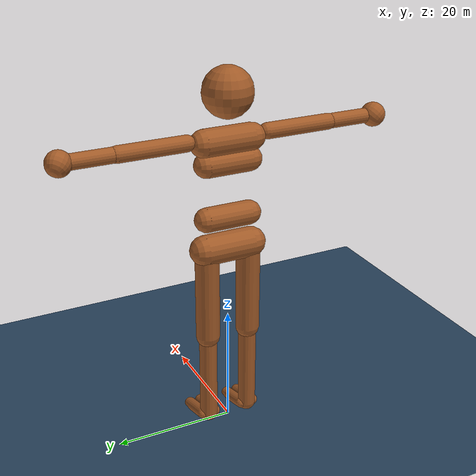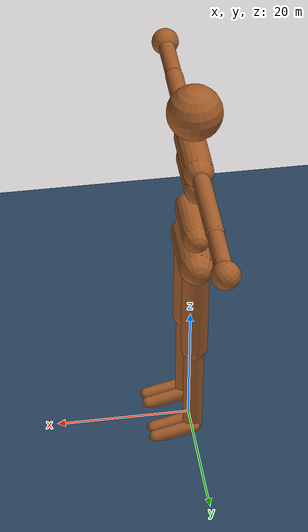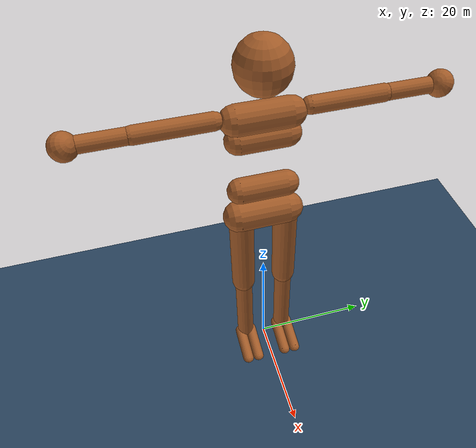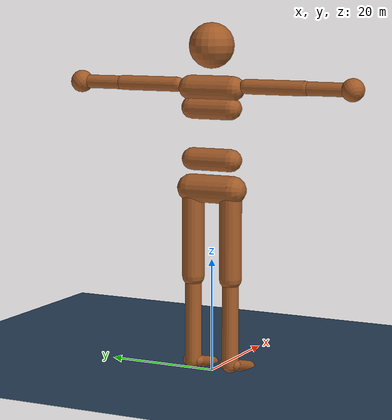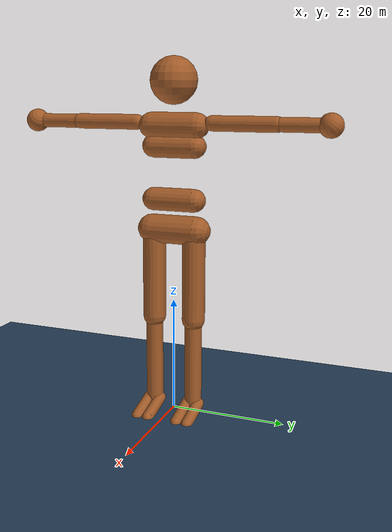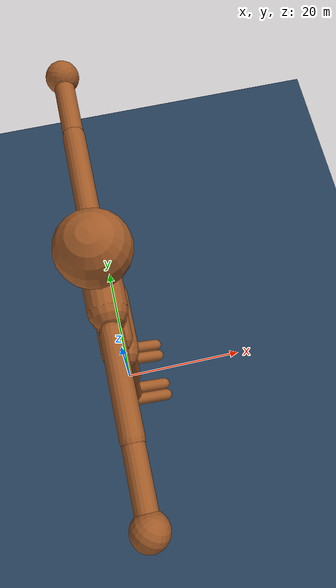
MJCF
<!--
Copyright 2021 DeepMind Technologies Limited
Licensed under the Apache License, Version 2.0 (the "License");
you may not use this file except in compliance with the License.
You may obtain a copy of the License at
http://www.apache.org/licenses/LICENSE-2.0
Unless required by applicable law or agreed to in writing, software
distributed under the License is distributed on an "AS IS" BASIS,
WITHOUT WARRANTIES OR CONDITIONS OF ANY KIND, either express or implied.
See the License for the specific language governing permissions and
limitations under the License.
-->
<mujoco model="Humanoid">
  <option timestep="0.005" iterations="1" ls_iterations="4">
    <flag eulerdamp="disable"/>
  </option>

  <visual>
    <map force="0.1" zfar="30"/>
    <rgba haze="0.15 0.25 0.35 1"/>
    <global offwidth="2560" offheight="1440" elevation="-20" azimuth="120"/>
  </visual>

  <statistic center="0 0 0.7"/>

  <asset>
    <texture type="skybox" builtin="gradient" rgb1=".3 .5 .7" rgb2="0 0 0" width="32" height="512"/>
    <texture name="body" type="cube" builtin="flat" mark="cross" width="128" height="128" rgb1="0.8 0.6 0.4" rgb2="0.8 0.6 0.4" markrgb="1 1 1" random="0.01"/>
    <material name="body" texture="body" texuniform="true" rgba="0.8 0.6 .4 1"/>
    <texture name="grid" type="2d" builtin="checker" width="512" height="512" rgb1=".1 .2 .3" rgb2=".2 .3 .4"/>
    <material name="grid" texture="grid" texrepeat="1 1" texuniform="true" reflectance=".2"/>
  </asset>

  <default>
    <motor ctrlrange="-1 1" ctrllimited="true"/>
    <default class="body">

      <!-- geoms -->
      <!-- TODO(robotics-simulation): support condim=1 for humanoid capsules. -->
      <geom type="capsule" condim="3" friction=".7" solimp=".9 .99 .003" solref=".015 1" material="body" contype="1" conaffinity="1"/>
      <default class="thigh">
        <geom size="2"/>
      </default>
      <default class="shin">
        <geom fromto="0 0 0 0 0 -15.41867"  size="1.5"/>
      </default>
      <default class="foot">
        <geom size="1"/>
        <default class="foot1">
          <geom fromto="-.07 -.01 0 .14 -.03 0"/>
        </default>
        <default class="foot2">
          <geom fromto="-.07 .01 0 .14  .03 0"/>
        </default>
      </default>
      <default class="arm_upper">
        <geom size="1.3"/>
      </default>
      <default class="arm_lower">
        <geom size="1.2"/>
      </default>
      <default class="hand">
        <geom type="sphere" size="2"/>
      </default>

      <!-- joints -->
      <joint type="hinge" damping=".2" stiffness="1" armature=".01" limited="true" solimplimit="0 .99 .01"/>
      <default class="joint_big">
        <joint damping="5" stiffness="10"/>
        <default class="hip_x">
          <joint range="-30 10"/>
        </default>
        <default class="hip_z">
          <joint range="-60 35"/>
        </default>
        <default class="hip_y">
          <joint axis="0 1 0" range="-50 75"/>
        </default>
        <default class="joint_big_stiff">
          <joint stiffness="20"/>
        </default>
      </default>
      <default class="knee">
        <joint pos="0 0 .02" axis="0 -1 0" range="-160 2"/>
      </default>
      <default class="ankle">
        <joint range="-50 50"/>
        <default class="ankle_y">
          <joint pos="0 0 .08" axis="0 1 0" stiffness="6"/>
        </default>
        <default class="ankle_x">
          <joint pos="0 0 .04" stiffness="3"/>
        </default>
      </default>
      <default class="shoulder">
        <joint range="-60 100"/>
      </default>
      <default class="elbow">
        <joint range="0 150" stiffness="0"/>
      </default>
    </default>
  </default>

  <worldbody>
    <geom name="floor" size="0 0 .05" type="plane" material="grid" condim="3"/>
    <light name="spotlight" mode="targetbodycom" target="torso" diffuse=".8 .8 .8" specular="0.3 0.3 0.3" pos="0 -6 75" cutoff="30"/>

    <body name="pelvis" pos="0 0 32.5308" childclass="body">
        <freejoint name="root"/>
        <geom name="butt" fromto="-.02 -4 0 -.02 4 0" size="2.5"/>

        <body name="waist_lower" pos="0 0 0.03937">
            <geom name="waist_lower" fromto="0 -3.64953 5.124145 0 3.64953 5.124145" size="2"/>
            <joint name="abdomen_z" pos="0 0 0" axis="0 0 1" range="-45 45" class="joint_big_stiff"/>
            <joint name="abdomen_y" pos="0 0 0" axis="0 1 0" range="-20 75" class="joint_big"/>

            <body name="torso" pos="0 0 10.24829">
                <light name="top" pos="0 0 2" mode="trackcom"/>
                <camera name="back" pos="-3 0 1" xyaxes="0 -1 0 1 0 2" mode="trackcom"/>
                <camera name="side" pos="0 -100 40" xyaxes="1 0 0 0 1 2" mode="trackcom"/>
                <joint name="torso_y" pos="0 0 0" axis="0 1 0" range="-35 35" class="joint_big_stiff"/>
                <geom name="torso" fromto="0 -4 7.36701 0 4 7.36701" size="2.2"/>
                <geom name="waist_upper" fromto="-.1 -3.64953 3.913435 -.1 3.64953 3.913435" size="2"/>
                <body name="head" pos="0 0 14.73402">
                    <geom name="head" type="sphere" size="4"/>
                    <camera name="egocentric" pos=".09 0 0" xyaxes="0 -1 0 .1 0 1" fovy="80"/>
                </body>
                <body name="upper_arm_right" pos="0 -6.71018 7.82685">
                    <joint name="shoulder1_right" axis="1 0 0"  class="shoulder"/>
                    <joint name="shoulder2_right" axis="0 0 1" class="shoulder"/>
                    <geom name="upper_arm_right" fromto="0 0 0 0 -10.94419 -0.00004" class="arm_upper"/>
                    <body name="lower_arm_right" pos="0 -10.94419 -0.00004">
                        <joint name="elbow_right" axis="0 0 1" class="elbow"/>
                        <geom name="lower_arm_right" fromto="0 0 0 0 -8.52010 -0.00003" class="arm_lower"/>
                        <body name="hand_right" pos="0 -8.52010 -0.00003">
                            <geom name="hand_right" zaxis="1 1 1" class="hand"/>
                        </body>
                    </body>
                </body>
                <body name="upper_arm_left" pos="0 6.71018 7.82685">
                    <joint name="shoulder1_left" axis="1 0 0" class="shoulder"/>
                    <joint name="shoulder2_left" axis="0 0 1"  class="shoulder"/>
                    <geom name="upper_arm_left" fromto="0 0 0 0 10.94419 -0.00004" class="arm_upper"/>
                    <body name="lower_arm_left" pos="0 10.94419 -0.00004">
                        <joint name="elbow_left" axis="0 0 -1" class="elbow"/>
                        <geom name="lower_arm_left" fromto="0 0 0 0 8.52010 -0.00003" class="arm_lower"/>
                        <body name="hand_left" pos="0 8.52010 -0.00003">
                            <geom name="hand_left" zaxis="1 -1 1" class="hand"/>
                        </body>
                    </body>
                </body>
            </body>
        </body>

        <body name="thigh_right" pos="0 -3.64953 0">
            <joint name="hip_x_right" axis="1 0 0" class="hip_x"/>
            <joint name="hip_z_right" axis="0 0 1" class="hip_z"/>
            <joint name="hip_y_right" class="hip_y"/>
            <geom name="thigh_right" fromto="0 0 0 0 0 -15.70580" class="thigh"/>
            <body name="shin_right" pos="0 0 -15.70580">
                <joint name="knee_right" class="knee"/>
                <geom name="shin_right" class="shin"/>
                <body name="foot_right" pos="0 0 -15.41867">
                    <joint name="ankle_y_right" class="ankle_y"/>
                    <joint name="ankle_x_right" class="ankle_x" axis="1 0 .5"/>
                    <geom name="foot1_right" fromto="0 -1 0 5.73033 -1 -1.53543" class="foot1"/>
                    <geom name="foot2_right" fromto="0 1 0 5.73033 1 -1.53543" class="foot2"/>
                </body>
            </body>
        </body>

        <body name="thigh_left" pos="0 3.64953 0">
            <joint name="hip_x_left" axis="-1 0 0" class="hip_x"/>
            <joint name="hip_z_left" axis="0 0 -1" class="hip_z"/>
            <joint name="hip_y_left" class="hip_y"/>
            <geom name="thigh_left" fromto="0 0 0 0 0 -15.70580" class="thigh"/>
            <body name="shin_left" pos="0 0 -15.70580">
                <joint name="knee_left" class="knee"/>
                <geom name="shin_left" class="shin"/>
                <body name="foot_left" pos="0 0 -15.41867">
                    <joint name="ankle_y_left" class="ankle_y"/>
                    <joint name="ankle_x_left" class="ankle_x" axis="-1 0 -.5"/>
                    <geom name="foot1_left" fromto="0 -1 0 5.73033 -1 -1.53543" class="foot1"/>
                    <geom name="foot2_left" fromto="0 1 0 5.73033 1 -1.53543" class="foot2"/>
                </body>
            </body>
        </body>
    </body>
  </worldbody>

  <contact>
    <exclude body1="pelvis" body2="thigh_right"/>
    <exclude body1="pelvis" body2="thigh_left"/>
    <exclude body1="thigh_left" body2="shin_left"/>
    <exclude body1="thigh_right" body2="shin_right"/>
    <exclude body1="shin_left" body2="foot_left"/>
    <exclude body1="shin_right" body2="foot_right"/>
    <exclude body1="pelvis" body2="waist_lower"/>
    <exclude body1="waist_lower" body2="torso"/>
    <exclude body1="torso" body2="upper_arm_left"/>
    <exclude body1="torso" body2="upper_arm_right"/>

    <exclude body1="upper_arm_left" body2="lower_arm_left"/>
    <exclude body1="lower_arm_left" body2="hand_left"/>

    <exclude body1="upper_arm_right" body2="lower_arm_right"/>
    <exclude body1="lower_arm_right" body2="hand_right"/>

  </contact>

  <actuator>
    <motor name="abdomen_y"       gear="40"  joint="abdomen_y"/>
    <motor name="abdomen_z"       gear="40"  joint="abdomen_z"/>
    <motor name="torso_y"       gear="40"  joint="torso_y"/>
    <motor name="hip_x_right"     gear="40"  joint="hip_x_right"/>
    <motor name="hip_z_right"     gear="40"  joint="hip_z_right"/>
    <motor name="hip_y_right"     gear="120" joint="hip_y_right"/>
    <motor name="knee_right"      gear="80"  joint="knee_right"/>
    <motor name="ankle_x_right"   gear="20"  joint="ankle_x_right"/>
    <motor name="ankle_y_right"   gear="20"  joint="ankle_y_right"/>
    <motor name="hip_x_left"      gear="40"  joint="hip_x_left"/>
    <motor name="hip_z_left"      gear="40"  joint="hip_z_left"/>
    <motor name="hip_y_left"      gear="120" joint="hip_y_left"/>
    <motor name="knee_left"       gear="80"  joint="knee_left"/>
    <motor name="ankle_x_left"    gear="20"  joint="ankle_x_left"/>
    <motor name="ankle_y_left"    gear="20"  joint="ankle_y_left"/>
    <motor name="shoulder1_right" gear="20"  joint="shoulder1_right"/>
    <motor name="shoulder2_right" gear="20"  joint="shoulder2_right"/>
    <motor name="elbow_right"     gear="40"  joint="elbow_right"/>
    <motor name="shoulder1_left"  gear="20"  joint="shoulder1_left"/>
    <motor name="shoulder2_left"  gear="20"  joint="shoulder2_left"/>
    <motor name="elbow_left"      gear="40"  joint="elbow_left"/>
  </actuator>

  <keyframe>
    <!--
    The values below are split into rows for readibility:
      torso position
      torso orientation
      spinal
      right leg
      left leg
      arms
    -->
    <key name="squat" qpos="0 0 0.596
                            0.988015 0 0.154359 0
                            0 0.4 0
                            -0.25 -0.5 -2.5 -2.65 -0.8 0.56
                            -0.25 -0.5 -2.5 -2.65 -0.8 0.56
                            0 0 0 0 0 0"/>
    <key name="stand_on_left_leg" qpos="0 0 1.21948
                                        0.971588 -0.179973 0.135318 -0.0729076
                                        -0.0516 -0.202 0.23
                                        -0.24 -0.007 -0.34 -1.76 -0.466 -0.0415
                                        -0.08 -0.01 -0.37 -0.685 -0.35 -0.09
                                        0.109 -0.067 -0.7 -0.05 0.12 0.16"/>
  </keyframe>
</mujoco>
